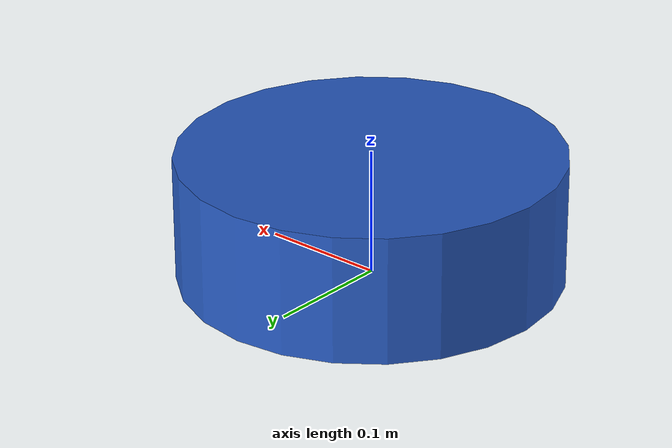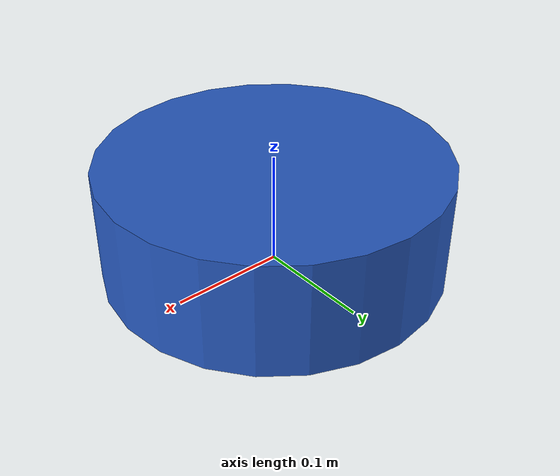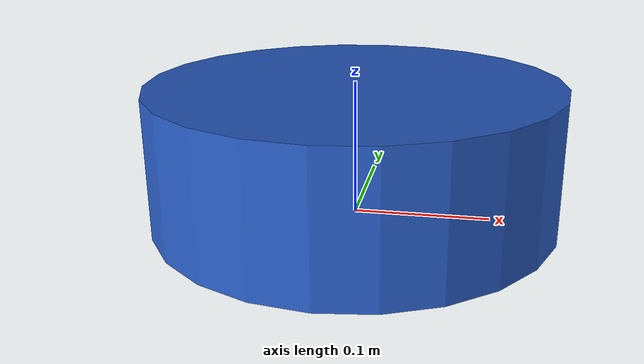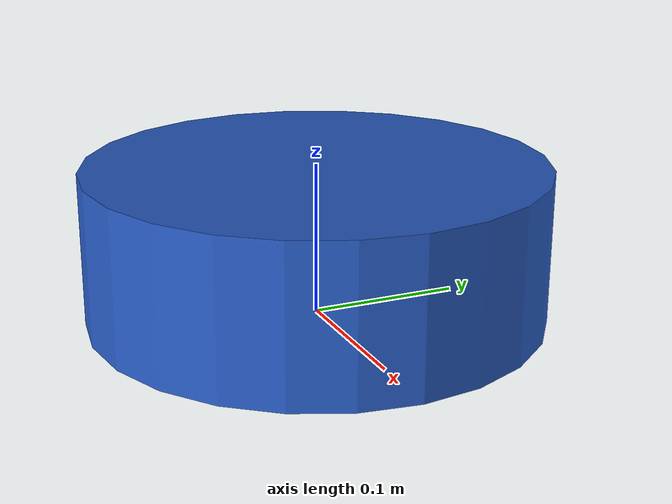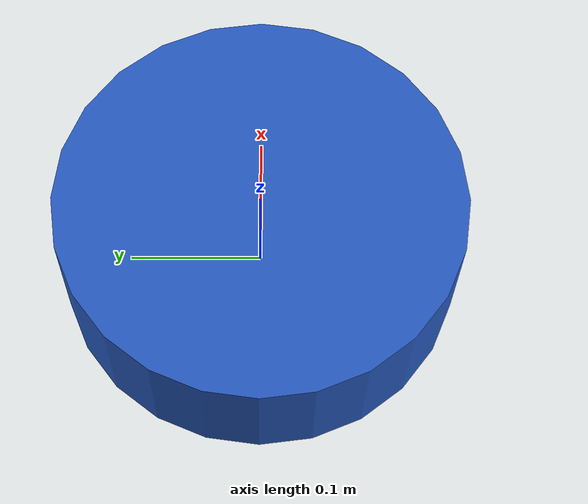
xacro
<?xml version="1.0"?>
<robot xmlns:xacro="http://www.ros.org/wiki/xacro" name="roscar">
  <xacro:arg name="laser_x" default="0.0"/>
  <xacro:arg name="laser_y" default="0.0"/>
  <xacro:arg name="laser_z" default="0.18"/>
  <xacro:arg name="laser_yaw" default="0.0"/>
  <xacro:arg name="imu_x" default="0.0"/>
  <xacro:arg name="imu_y" default="0.0"/>
  <xacro:arg name="imu_z" default="0.0"/>
  <xacro:arg name="imu_yaw" default="0.0"/>
  <xacro:arg name="camera_x" default="0.0"/>
  <xacro:arg name="camera_y" default="0.0"/>
  <xacro:arg name="camera_z" default="0.20"/>
  <xacro:arg name="camera_yaw" default="0.0"/>

  <link name="base_footprint"/>
  <link name="base_link">
    <visual>
      <origin xyz="0 0 0.05" rpy="0 0 0"/>
      <geometry><cylinder radius="0.15" length="0.10"/></geometry>
      <material name="body"><color rgba="0.15 0.35 0.75 1.0"/></material>
    </visual>
    <collision>
      <origin xyz="0 0 0.05" rpy="0 0 0"/>
      <geometry><cylinder radius="0.15" length="0.10"/></geometry>
    </collision>
  </link>
  <joint name="base_footprint_joint" type="fixed">
    <parent link="base_footprint"/><child link="base_link"/>
  </joint>

  <link name="base_laser"/>
  <joint name="base_laser_joint" type="fixed">
    <origin xyz="$(arg laser_x) $(arg laser_y) $(arg laser_z)"
            rpy="0 0 $(arg laser_yaw)"/>
    <parent link="base_link"/><child link="base_laser"/>
  </joint>

  <link name="imu_link"/>
  <joint name="imu_joint" type="fixed">
    <origin xyz="$(arg imu_x) $(arg imu_y) $(arg imu_z)"
            rpy="0 0 $(arg imu_yaw)"/>
    <parent link="base_link"/><child link="imu_link"/>
  </joint>

  <!-- r200_link 之下的光学系(r200_*_optical_frame)由 r200_node 从 SDK 外参发布,
       不写入 URDF。 -->
  <link name="r200_link"/>
  <joint name="r200_joint" type="fixed">
    <origin xyz="$(arg camera_x) $(arg camera_y) $(arg camera_z)"
            rpy="0 0 $(arg camera_yaw)"/>
    <parent link="base_link"/><child link="r200_link"/>
  </joint>
</robot>
